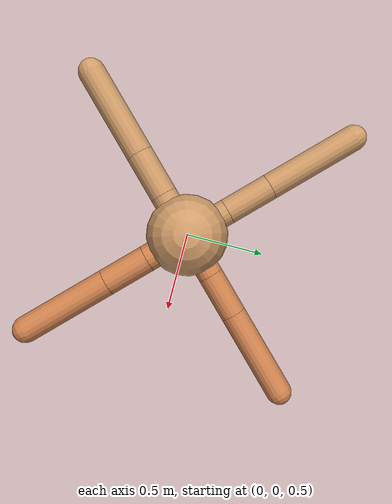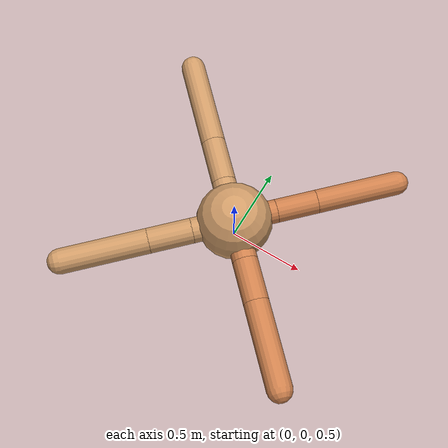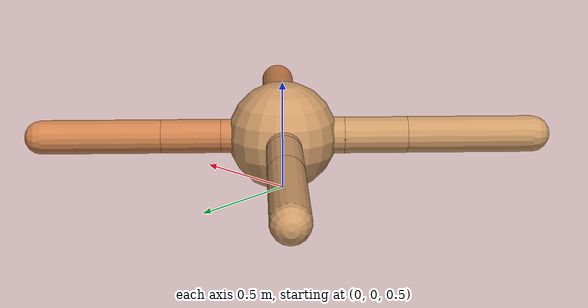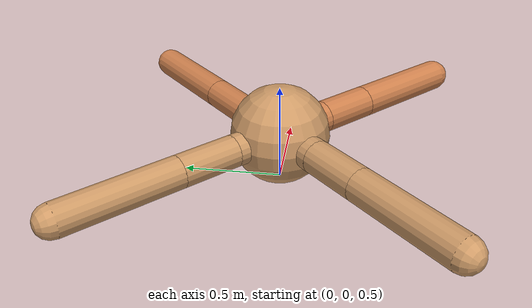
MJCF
<?xml version="1.0" ?>
<mujoco model="ant">

	<compiler angle="degree" coordinate="local" inertiafromgeom="true"/>

	<option integrator="RK4" timestep="0.01"/>

	<custom>

		<numeric data="0.0 0.0 0.55 1.0 0.0 0.0 0.0 0.0 1.0 0.0 -1.0 0.0 -1.0 0.0 1.0" name="init_qpos"/>

	</custom>

	<default>

		<joint armature="1" damping="1" limited="true"/>

		<geom conaffinity="0" condim="3" density="5.0" friction="1.5 0.1 0.1" margin="0.01" rgba="0.8 0.6 0.4 1"/>

	</default>

	<worldbody>

		<body name="torso" pos="0 0 0.75">

			<geom name="torso_geom" pos="0 0 0" size="0.2508485311913941" type="sphere"/>

			<!--joint armature="0" damping="0" limited="false" margin="0.01" name="root" pos="0 0 0" type="free"/-->

			<body name="front_left_leg" pos="0 0 0">

				<geom fromto="0 0 0 0.2 0.2 0" name="aux_1_geom" size="0.07810436352651207" type="capsule" rgba=".8 .5 .3 1"/>

				<body name="aux_1" pos="0.2 0.2 0">

					<joint axis="0 0 1" name="hip_1" pos="0.0 0.0 0.0" range="-40 40" type="hinge"/>

					<geom fromto="0 0 0 0.19336822946154203 0.19336822946154203 0" name="left_leg_geom" size="0.07810436352651207" type="capsule" rgba=".8 .5 .3 1"/>

					<body pos="0.19336822946154203 0.19336822946154203 0" name="front_left_foot">

						<joint axis="-1 1 0" name="ankle_1" pos="0.0 0.0 0.0" range="30 100" type="hinge"/>

						<geom fromto="0 0 0 0.38673645892308406 0.38673645892308406 0" name="left_ankle_geom" size="0.07810436352651207" type="capsule" rgba=".8 .5 .3 1"/>

					</body>

				</body>

			</body>

			<body name="front_right_leg" pos="0 0 0">

				<geom fromto="0 0 0 -0.2 0.2 0" name="aux_2_geom" size="0.08081004451647562" type="capsule"/>

				<body name="aux_2" pos="-0.2 0.2 0">

					<joint axis="0 0 1" name="hip_2" pos="0.0 0.0 0.0" range="-40 40" type="hinge"/>

					<geom fromto="0 0 0 -0.20931326464411637 0.20931326464411637 0" name="right_leg_geom" size="0.08081004451647562" type="capsule"/>

					<body pos="-0.20931326464411637 0.20931326464411637 0" name="front_right_foot">

						<joint axis="1 1 0" name="ankle_2" pos="0.0 0.0 0.0" range="-100 -30" type="hinge"/>

						<geom fromto="0 0 0 -0.41862652928823274 0.41862652928823274 0" name="right_ankle_geom" size="0.08081004451647562" type="capsule"/>

					</body>

				</body>

			</body>

			<body name="left_back_leg" pos="0 0 0">

				<geom fromto="0 0 0 -0.2 -0.2 0" name="aux_3_geom" size="0.08411515464785048" type="capsule"/>

				<body name="aux_3" pos="-0.2 -0.2 0">

					<joint axis="0 0 1" name="hip_3" pos="0.0 0.0 0.0" range="-40 40" type="hinge"/>

					<geom fromto="0 0 0 -0.20457668961453687 -0.20457668961453687 0" name="back_leg_geom" size="0.08411515464785048" type="capsule"/>

					<body pos="-0.20457668961453687 -0.20457668961453687 0" name="left_back_foot">

						<joint axis="-1 1 0" name="ankle_3" pos="0.0 0.0 0.0" range="-100 -30" type="hinge"/>

						<geom fromto="0 0 0 -0.40915337922907374 -0.40915337922907374 0" name="third_ankle_geom" size="0.08411515464785048" type="capsule"/>

					</body>

				</body>

			</body>

			<body name="right_back_leg" pos="0 0 0">

				<geom fromto="0 0 0 0.2 -0.2 0" name="aux_4_geom" size="0.08394688084901418" type="capsule" rgba=".8 .5 .3 1"/>

				<body name="aux_4" pos="0.2 -0.2 0">

					<joint axis="0 0 1" name="hip_4" pos="0.0 0.0 0.0" range="-40 40" type="hinge"/>

					<geom fromto="0 0 0 0.2008938649644192 -0.2008938649644192 0" name="rightback_leg_geom" size="0.08394688084901418" type="capsule" rgba=".8 .5 .3 1"/>

					<body pos="0.2008938649644192 -0.2008938649644192 0" name="right_back_foot">

						<joint axis="1 1 0" name="ankle_4" pos="0.0 0.0 0.0" range="30 100" type="hinge"/>

						<geom fromto="0 0 0 0.4017877299288384 -0.4017877299288384 0" name="fourth_ankle_geom" size="0.08394688084901418" type="capsule" rgba=".8 .5 .3 1"/>

					</body>

				</body>

			</body>

		</body>

	</worldbody>

	<actuator>

		<motor ctrllimited="true" ctrlrange="-1.0 1.0" joint="hip_4" gear="150"/>

		<motor ctrllimited="true" ctrlrange="-1.0 1.0" joint="ankle_4" gear="150"/>

		<motor ctrllimited="true" ctrlrange="-1.0 1.0" joint="hip_1" gear="150"/>

		<motor ctrllimited="true" ctrlrange="-1.0 1.0" joint="ankle_1" gear="150"/>

		<motor ctrllimited="true" ctrlrange="-1.0 1.0" joint="hip_2" gear="150"/>

		<motor ctrllimited="true" ctrlrange="-1.0 1.0" joint="ankle_2" gear="150"/>

		<motor ctrllimited="true" ctrlrange="-1.0 1.0" joint="hip_3" gear="150"/>

		<motor ctrllimited="true" ctrlrange="-1.0 1.0" joint="ankle_3" gear="150"/>

	</actuator>

</mujoco>
